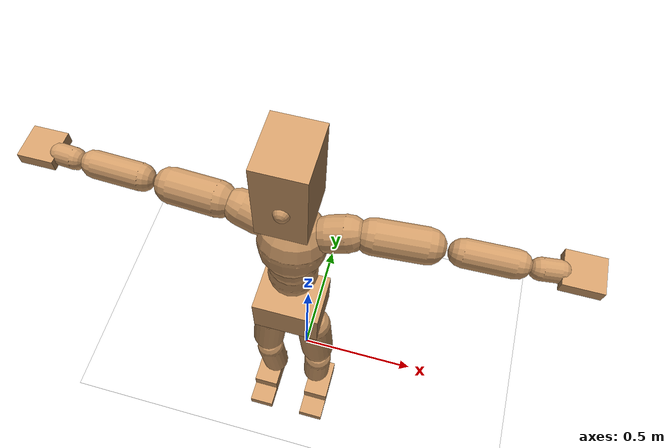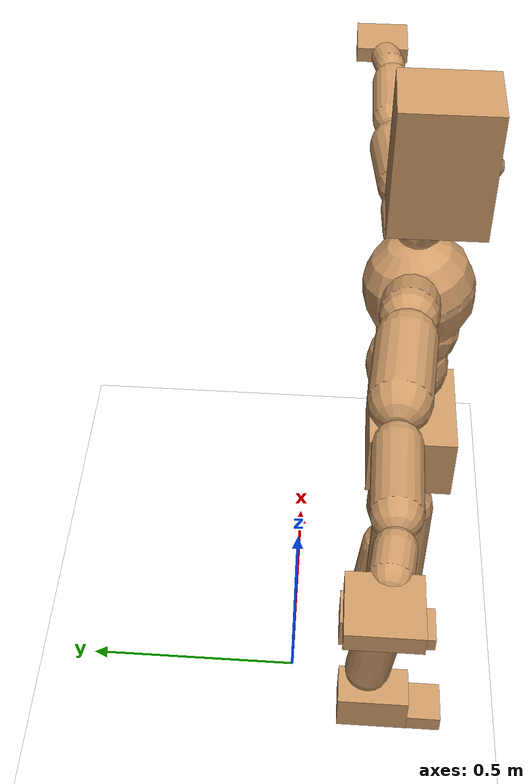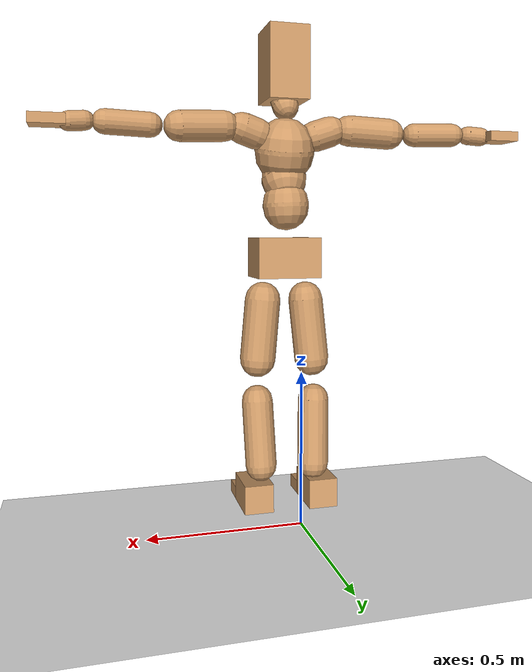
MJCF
<mujoco model="humanoid">
  <option integrator="implicitfast" />

  <visual>
    <global offwidth="1280" offheight="960" />
    <headlight active="1" ambient="0.34 0.34 0.34" diffuse="0.5 0.5 0.5" />
  </visual>

  <default>
    <joint damping="2" stiffness="2" armature="0.01" limited="true" solimplimit="0 .99 .01" />
    <geom condim="1" friction="0.7 0.005 0.0001" solimp=".99 .99 .003" solref="0.015 1" margin="0.001" rgba="0.8 0.6 .4 1" />
    <default class="smplcontact">
      <geom condim="3" friction="1. 0.005 0.0001" solref="0.015 1" solimp="0.98 0.98 0.001" priority="1" />
    </default>
    <default class="stiff_medium">
      <joint stiffness="10" />
    </default>
    <default class="stiff_medium_higher">
      <joint stiffness="50" />
    </default>
    <default class="stiff_high">
      <joint stiffness="100" />
    </default>
  </default>

  <asset>
    <texture type="skybox" builtin="gradient" rgb1="0.99 0.99 0.99" rgb2="0.608 0.828 0.892" width="100" />
    <texture builtin="flat" height="1278" mark="cross" markrgb="1 1 1" name="texgeom" random="0.01" rgb1="0.8 0.6 0.4" rgb2="0.8 0.6 0.4" type="cube" width="127" />
    <texture name="texplane" type="2d" builtin="checker" markrgb="1 1 1" rgb1="0.756 0.772 0.76" rgb2="0.6 0.6 0.6" width="100" height="100" />
    <material name="MatPlane" reflectance="0.5" texture="texplane" texrepeat="1 1" texuniform="true" />
    <material name="geom" texture="texgeom" texuniform="true" />
  </asset>

  <worldbody>
    <light name="tracking_light" pos="0 0 7" dir="0 0 -1" directional="true" cutoff="100" exponent="1" diffuse="1 1 1" specular="0.1 0.1 0.1" mode="trackcom" />
    <camera name="back" pos="0 3 2.4" xyaxes="-1 0 0 0 -1 2" mode="trackcom" />
    <camera name="side" pos="-3 0 2.4" xyaxes="0 -1 0 1 0 2" mode="trackcom" />
    <camera name="front_side" pos="-2.8 -2.8 0.8" xyaxes="0.5 -0.5 0 0.1 0.1 1" mode="trackcom" />
    <geom condim="3" name="floor" pos="0 0 0" rgba="1 1 1 1" size="100 100 .2" type="plane" material="MatPlane" />
    <body name="Pelvis" pos="-0.0018 -0.2233 0.877729" euler="90 0 0">
      <site name="Pelvis" size="0.01" />
      <freejoint name="Pelvis" />
      <geom type="box" pos="0 -0.011604 -0.0056793" size="0.110385 0.0692406 0.0857058" quat="1.0000 0.0000 0.0000 0.0000" density="3165.830099" name="Pelvis" />
      <body name="L_Hip" pos="0.0717657 -0.0876536 -0.00702168">
        <joint name="L_Hip_x" type="hinge" pos="0 0 0" axis="1 0 0" stiffness="10" range="-160.0 22.92" class="stiff_medium" damping="15" />
        <joint name="L_Hip_y" type="hinge" pos="0 0 0" axis="0 1 0" stiffness="10" range="-70.0 70.0" class="stiff_medium" damping="10" />
        <joint name="L_Hip_z" type="hinge" pos="0 0 0" axis="0 0 1" stiffness="10" range="-28.65 90.0" class="stiff_medium" damping="10" />
        <geom type="capsule" density="2040.816327" fromto="0.00639814 -0.0694888 -0.000833922 0.0253919 -0.278142 -0.00333554" size="0.0613524" name="L_Hip" />
        <body name="L_Knee" pos="0.03179 -0.347631 -0.00416946">
          <joint name="L_Knee_x" type="hinge" pos="0 0 0" axis="1 0 0" range="-5.16 171.89" damping="8" />
          <joint name="L_Knee_y" type="hinge" pos="0 0 0" axis="0 1 0" range="-4.58 6.88" damping="8" />
          <joint name="L_Knee_z" type="hinge" pos="0 0 0" axis="0 0 1" range="-6.88 4.58" damping="8" />
          <geom type="capsule" density="1234.567901" fromto="-0.00249927 -0.0737519 -0.00805608 -0.0100968 -0.295006 -0.0324237" size="0.0539702" name="L_Knee" />
          <body name="L_Ankle" pos="-0.012596 -0.368758 -0.0404797">
            <joint name="L_Ankle_x" type="hinge" pos="0 0 0" axis="1 0 0" range="-45.84 45.84" class="stiff_medium" damping="6" />
            <joint name="L_Ankle_y" type="hinge" pos="0 0 0" axis="0 1 0" range="-74.48 22.92" class="stiff_medium" damping="3" />
            <joint name="L_Ankle_z" type="hinge" pos="0 0 0" axis="0 0 1" range="-4.58 4.58" class="stiff_medium" damping="6" />
            <geom type="box" pos="0.0240596 -0.0246791 0.023326" size="0.0498746 0.0479126 0.0819301" quat="1.0000 0.0000 0.0000 0.0000" density="449.071558" name="L_Ankle" class="smplcontact" />
            <body name="L_Toe" pos="0.0272606 -0.0576191 0.114991">
              <joint name="L_Toe_x" type="hinge" pos="0 0 0" axis="1 0 0" range="-91.67 22.92" />
              <joint name="L_Toe_y" type="hinge" pos="0 0 0" axis="0 1 0" range="-4.58 4.58" />
              <joint name="L_Toe_z" type="hinge" pos="0 0 0" axis="0 0 1" range="-4.58 4.58" />
              <geom type="box" pos="-0.0030978 0.0056793 0.0239043" size="0.0493583 0.020652 0.0478086" quat="1.0000 0.0000 0.0000 0.0000" density="423.206892" name="L_Toe" class="smplcontact" />
            </body>
          </body>
        </body>
      </body>
      <body name="R_Hip" pos="-0.069907 -0.0867904 -0.00444018">
        <joint name="R_Hip_x" type="hinge" pos="0 0 0" axis="1 0 0" stiffness="10" range="-160.0 22.92" class="stiff_medium" damping="15" />
        <joint name="R_Hip_y" type="hinge" pos="0 0 0" axis="0 1 0" stiffness="10" range="-70.0 70.0" class="stiff_medium" damping="10" />
        <joint name="R_Hip_z" type="hinge" pos="0 0 0" axis="0 0 1" stiffness="10" range="-90.0 28.65" class="stiff_medium" damping="10" />
        <geom type="capsule" density="2040.816327" fromto="-0.00713915 -0.0708785 -0.00167015 -0.0283565 -0.283608 -0.00658073" size="0.0604546" name="R_Hip" />
        <body name="R_Knee" pos="-0.0354957 -0.354487 -0.00825088">
          <joint name="R_Knee_x" type="hinge" pos="0 0 0" axis="1 0 0" range="-5.16 171.89" damping="8" />
          <joint name="R_Knee_y" type="hinge" pos="0 0 0" axis="0 1 0" range="-6.88 4.58" damping="8" />
          <joint name="R_Knee_z" type="hinge" pos="0 0 0" axis="0 0 1" range="-4.58 6.88" damping="8" />
          <geom type="capsule" density="1234.567901" fromto="0.0029695 -0.0738433 -0.00787987 0.0116788 -0.295282 -0.0313209" size="0.0539702" name="R_Knee" />
          <body name="R_Ankle" pos="0.0146483 -0.369126 -0.0392008">
            <joint name="R_Ankle_x" type="hinge" pos="0 0 0" axis="1 0 0" range="-45.84 45.84" class="stiff_medium" damping="6" />
            <joint name="R_Ankle_y" type="hinge" pos="0 0 0" axis="0 1 0" range="-22.92 74.48" class="stiff_medium" damping="3" />
            <joint name="R_Ankle_z" type="hinge" pos="0 0 0" axis="0 0 1" range="-4.58 4.58" class="stiff_medium" damping="6" />
            <geom type="box" pos="-0.0218911 -0.0179672 0.0246754" size="0.0498746 0.0493583 0.0833759" quat="1.0000 0.0000 0.0000 0.0000" density="434.700981" name="R_Ankle" class="smplcontact" />
            <body name="R_Toe" pos="-0.026228 -0.0496681 0.118847">
              <joint name="R_Toe_x" type="hinge" pos="0 0 0" axis="1 0 0" range="-91.67 22.92" />
              <joint name="R_Toe_y" type="hinge" pos="0 0 0" axis="0 1 0" range="-4.58 4.58" />
              <joint name="R_Toe_z" type="hinge" pos="0 0 0" axis="0 0 1" range="-4.58 4.58" />
              <geom type="box" pos="0.00433692 0.0046467 0.0218802" size="0.0494615 0.0223042 0.0475195" quat="1.0000 0.0000 0.0000 0.0000" density="407.384095" name="R_Toe" class="smplcontact" />
            </body>
          </body>
        </body>
      </body>
      <body name="Torso" pos="-0.0025815 0.104532 -0.0275704">
        <joint name="Torso_x" type="hinge" pos="0 0 0" axis="1 0 0" range="-25.78 57.3" class="stiff_medium" damping="15" />
        <joint name="Torso_y" type="hinge" pos="0 0 0" axis="0 1 0" range="-57.3 57.3" class="stiff_high" damping="20" />
        <joint name="Torso_z" type="hinge" pos="0 0 0" axis="0 0 1" range="-34.38 34.38" class="stiff_high" damping="20" />
        <geom type="capsule" density="2040.816327" fromto="0.00242204 0.0584586 0.000484408 0.00290279 0.0714388 0.000580558" size="0.0796146" name="Torso" />
        <body name="Spine" pos="0.00532456 0.129994 0.00106491">
          <joint name="Spine_x" type="hinge" pos="0 0 0" axis="1 0 0" stiffness="10" range="-25.78 57.3" class="stiff_medium" damping="15" />
          <joint name="Spine_y" type="hinge" pos="0 0 0" axis="0 1 0" stiffness="10" range="-57.3 57.3" class="stiff_high" damping="8" />
          <joint name="Spine_z" type="hinge" pos="0 0 0" axis="0 0 1" stiffness="20" range="-34.38 34.38" class="stiff_high" damping="12" />
          <geom type="capsule" density="2040.816327" fromto="0.000691716 0.0228915 0.0109446 0.000787867 0.0279874 0.0134445" size="0.0781652" name="Spine" />
          <body name="Chest" pos="0.00147958 0.0508789 0.0243891">
            <joint name="Chest_x" type="hinge" pos="0 0 0" axis="1 0 0" stiffness="10" range="-25.78 57.3" class="stiff_medium" damping="15" />
            <joint name="Chest_y" type="hinge" pos="0 0 0" axis="0 1 0" stiffness="10" range="-57.3 57.3" class="stiff_high" damping="8" />
            <joint name="Chest_z" type="hinge" pos="0 0 0" axis="0 0 1" stiffness="20" range="-34.38 34.38" class="stiff_high" damping="12" />
            <geom type="capsule" density="2040.816327" fromto="-0.000898474 0.0655798 -0.0166122 -0.000994624 0.0800985 -0.020362" size="0.103737" name="Chest" />
            <body name="Neck" pos="-0.00279576 0.205885 -0.0403941">
              <joint name="Neck_x" type="hinge" pos="0 0 0" axis="1 0 0" range="-28.65 57.3" class="stiff_medium_higher" damping="10" />
              <joint name="Neck_y" type="hinge" pos="0 0 0" axis="0 1 0" range="-40.11 40.11" class="stiff_medium_higher" damping="10" />
              <joint name="Neck_z" type="hinge" pos="0 0 0" axis="0 0 1" range="-40.11 40.11" class="stiff_medium_higher" damping="10" />
              <geom type="capsule" density="1000" fromto="0.000961334 0.0125294 0.00992962 0.00394937 0.0501209 0.0396172" size="0.0452481" name="Neck" />
              <body name="Head" pos="0.00501474 0.0626535 0.0494456">
                <joint name="Head_x" type="hinge" pos="0 0 0" axis="1 0 0" range="-28.65 57.3" class="stiff_medium_higher" damping="2" />
                <joint name="Head_y" type="hinge" pos="0 0 0" axis="0 1 0" range="-40.11 40.11" class="stiff_medium_higher" damping="2" />
                <joint name="Head_z" type="hinge" pos="0 0 0" axis="0 0 1" range="-40.11 40.11" class="stiff_medium_higher" damping="2" />
                <geom type="box" pos="-0.00485856 0.0941121 -0.0134189" size="0.0701021 0.123979 0.0879168" quat="1.0000 0.0000 0.0000 0.0000" density="1018.069894" name="Head" />
                <geom type="capsule" name="nose" size="0.023136 0.011568" pos="0 0.0752037 0.05784" quat="1 0 0 0" mass="0" contype="0" conaffinity="0" />
              </body>
            </body>
            <body name="L_Thorax" pos="0.0816412 0.117003 -0.0329812">
              <joint name="L_Thorax_x" type="hinge" pos="0 0 0" axis="1 0 0" range="-10.89 4.58" class="stiff_medium_higher" damping="20" />
              <joint name="L_Thorax_y" type="hinge" pos="0 0 0" axis="0 1 0" range="-28.65 17.19" class="stiff_medium_higher" damping="20" />
              <joint name="L_Thorax_z" type="hinge" pos="0 0 0" axis="0 0 1" range="-31.51 40.11" class="stiff_medium_higher" damping="20" />
              <geom type="capsule" density="1000" fromto="0.0174104 0.00583536 -0.00172436 0.0696423 0.0233417 -0.00679448" size="0.053663" name="L_Thorax" />
              <body name="L_Shoulder" pos="0.0870527 0.029177 -0.00851884">
                <joint name="L_Shoulder_x" type="hinge" pos="0 0 0" axis="1 0 0" range="-97.4 97.4" class="stiff_medium" damping="6" />
                <joint name="L_Shoulder_y" type="hinge" pos="0 0 0" axis="0 1 0" range="-108.86 80.21" class="stiff_medium" damping="6" />
                <joint name="L_Shoulder_z" type="hinge" pos="0 0 0" axis="0 0 1" range="-97.4 85.94" class="stiff_medium" damping="6" />
                <geom type="capsule" density="1000" fromto="0.0488282 -0.00245104 -0.00517472 0.195408 -0.00960126 -0.0206982" size="0.0523721" name="L_Shoulder" />
                <body name="L_Elbow" pos="0.244236 -0.0120523 -0.0258729">
                  <joint name="L_Elbow_x" type="hinge" pos="0 0 0" axis="1 0 0" range="-17.19 4.58" damping="5" />
                  <joint name="L_Elbow_y" type="hinge" pos="0 0 0" axis="0 1 0" range="-180.0 17.19" damping="5" />
                  <joint name="L_Elbow_z" type="hinge" pos="0 0 0" axis="0 0 1" range="-100.84 4.58" damping="5" />
                  <geom type="capsule" density="1000" fromto="0.0468527 0.00169365 -0.00018578 0.187599 0.00677406 -0.000844352" size="0.0410265" name="L_Elbow" />
                  <body name="L_Wrist" pos="0.234452 0.00846771 -0.00113143">
                    <joint name="L_Wrist_x" type="hinge" pos="0 0 0" axis="1 0 0" range="-180.0 22.92" />
                    <joint name="L_Wrist_y" type="hinge" pos="0 0 0" axis="0 1 0" range="-17.19 17.19" />
                    <joint name="L_Wrist_z" type="hinge" pos="0 0 0" axis="0 0 1" range="-22.92 22.92" />
                    <geom type="capsule" density="1000" fromto="0.015806 -0.00150292 -0.00282249 0.0632232 -0.00611293 -0.0112899" size="0.0322134" name="L_Wrist" class="smplcontact" />
                    <body name="L_Hand" pos="0.0790297 -0.00771721 -0.0140111">
                      <joint name="L_Hand_x" type="hinge" pos="0 0 0" axis="1 0 0" range="-17.19 17.19" />
                      <joint name="L_Hand_y" type="hinge" pos="0 0 0" axis="0 1 0" range="-51.57 51.57" />
                      <joint name="L_Hand_z" type="hinge" pos="0 0 0" axis="0 0 1" range="-91.67 91.67" />
                      <geom type="box" pos="0.0472792 0.0010326 -0.00598908" size="0.0561021 0.0163151 0.0555539" quat="1.0000 0.0000 0.0000 0.0000" density="400.552564" name="L_Hand" class="smplcontact" />
                    </body>
                  </body>
                </body>
              </body>
            </body>
            <body name="R_Thorax" pos="-0.0846283 0.114048 -0.0376521">
              <joint name="R_Thorax_x" type="hinge" pos="0 0 0" axis="1 0 0" range="-10.89 4.58" class="stiff_medium_higher" damping="20" />
              <joint name="R_Thorax_y" type="hinge" pos="0 0 0" axis="0 1 0" range="-17.19 28.65" class="stiff_medium_higher" damping="20" />
              <joint name="R_Thorax_z" type="hinge" pos="0 0 0" axis="0 0 1" range="-40.11 31.51" class="stiff_medium_higher" damping="20" />
              <geom type="capsule" density="1000" fromto="-0.0183675 0.00621815 -0.0017195 -0.0734692 0.0248724 -0.00698096" size="0.052633" name="R_Thorax" />
              <body name="R_Shoulder" pos="-0.0918345 0.0311928 -0.00870025">
                <joint name="R_Shoulder_x" type="hinge" pos="0 0 0" axis="1 0 0" range="-97.4 97.4" class="stiff_medium" damping="6" />
                <joint name="R_Shoulder_y" type="hinge" pos="0 0 0" axis="0 1 0" range="-80.21 108.86" class="stiff_medium" damping="6" />
                <joint name="R_Shoulder_z" type="hinge" pos="0 0 0" axis="0 0 1" range="-85.94 97.4" class="stiff_medium" damping="6" />
                <geom type="capsule" density="1000" fromto="-0.0476991 -0.00254285 -0.0040483 -0.190986 -0.0100694 -0.0160908" size="0.0537903" name="R_Shoulder" />
                <body name="R_Elbow" pos="-0.238685 -0.012511 -0.0201391">
                  <joint name="R_Elbow_x" type="hinge" pos="0 0 0" axis="1 0 0" range="-17.19 4.58" damping="5" />
                  <joint name="R_Elbow_y" type="hinge" pos="0 0 0" axis="0 1 0" range="-17.19 180.0" damping="5" />
                  <joint name="R_Elbow_z" type="hinge" pos="0 0 0" axis="0 0 1" range="-4.58 100.84" damping="5" />
                  <geom type="capsule" density="1000" fromto="-0.0480757 0.00150997 -0.00103479 -0.192115 0.00583773 -0.00413949" size="0.0413304" name="R_Elbow" />
                  <body name="R_Wrist" pos="-0.24019 0.0073477 -0.00527558">
                    <joint name="R_Wrist_x" type="hinge" pos="0 0 0" axis="1 0 0" range="-180.0 22.92" />
                    <joint name="R_Wrist_y" type="hinge" pos="0 0 0" axis="0 1 0" range="-17.19 17.19" />
                    <joint name="R_Wrist_z" type="hinge" pos="0 0 0" axis="0 0 1" range="-22.92 22.92" />
                    <geom type="capsule" density="1000" fromto="-0.0158997 -0.00112674 -0.0019784 -0.0636932 -0.00460776 -0.00781147" size="0.0330238" name="R_Wrist" class="smplcontact" />
                    <body name="R_Hand" pos="-0.0795937 -0.00573457 -0.00968867">
                      <joint name="R_Hand_x" type="hinge" pos="0 0 0" axis="1 0 0" range="-17.19 17.19" />
                      <joint name="R_Hand_y" type="hinge" pos="0 0 0" axis="0 1 0" range="-51.57 51.57" />
                      <joint name="R_Hand_z" type="hinge" pos="0 0 0" axis="0 0 1" range="-91.67 91.67" />
                      <geom type="box" pos="-0.0443063 -0.00092934 -0.00815754" size="0.0545677 0.0169346 0.05638" quat="1.0000 0.0000 0.0000 0.0000" density="403.679611" name="R_Hand" class="smplcontact" />
                    </body>
                  </body>
                </body>
              </body>
            </body>
          </body>
        </body>
      </body>
    </body>
  </worldbody>
  <actuator>
    <general name="L_Hip_x" joint="L_Hip_x" biastype="affine" gainprm="287.33006409732246" biasprm="-215.3247604770444 -180 -2.0" ctrllimited="true" ctrlrange="-1 1" forcerange="-360 360" />
    <general name="L_Hip_y" joint="L_Hip_y" biastype="affine" gainprm="219.9114857512855" biasprm="0.0 -180 -2.0" ctrllimited="true" ctrlrange="-1 1" forcerange="-360 360" />
    <general name="L_Hip_z" joint="L_Hip_z" biastype="affine" gainprm="186.3749841742145" biasprm="96.3683546488669 -180 -2.0" ctrllimited="true" ctrlrange="-1 1" forcerange="-360 360" />
    <general name="L_Knee_x" joint="L_Knee_x" biastype="affine" gainprm="278.10948965903646" biasprm="261.8988715665131 -180 -2.0" ctrllimited="true" ctrlrange="-1 1" forcerange="-360 360" />
    <general name="L_Knee_y" joint="L_Knee_y" biastype="affine" gainprm="18.001325905069514" biasprm="3.612831551628262 -180 -2.0" ctrllimited="true" ctrlrange="-1 1" forcerange="-360 360" />
    <general name="L_Knee_z" joint="L_Knee_z" biastype="affine" gainprm="18.001325905069514" biasprm="-3.612831551628262 -180 -2.0" ctrllimited="true" ctrlrange="-1 1" forcerange="-360 360" />
    <general name="L_Ankle_x" joint="L_Ankle_x" biastype="affine" gainprm="72.00530362027807" biasprm="0.0 -90 -2.0" ctrllimited="true" ctrlrange="-1 1" forcerange="-180 180" />
    <general name="L_Ankle_y" joint="L_Ankle_y" biastype="affine" gainprm="76.49778111491148" biasprm="-40.49512930477244 -90 -2.0" ctrllimited="true" ctrlrange="-1 1" forcerange="-180 180" />
    <general name="L_Ankle_z" joint="L_Ankle_z" biastype="affine" gainprm="7.1942471767206255" biasprm="0.0 -90 -2.0" ctrllimited="true" ctrlrange="-1 1" forcerange="-180 180" />
    <general name="L_Toe_x" joint="L_Toe_x" biastype="affine" gainprm="71.99902043497087" biasprm="-43.19689898685965 -72 -0.8" ctrllimited="true" ctrlrange="-1 1" forcerange="-144 144" />
    <general name="L_Toe_y" joint="L_Toe_y" biastype="affine" gainprm="5.755397741376501" biasprm="0.0 -72 -0.8" ctrllimited="true" ctrlrange="-1 1" forcerange="-144 144" />
    <general name="L_Toe_z" joint="L_Toe_z" biastype="affine" gainprm="5.755397741376501" biasprm="0.0 -72 -0.8" ctrllimited="true" ctrlrange="-1 1" forcerange="-144 144" />
    <general name="R_Hip_x" joint="R_Hip_x" biastype="affine" gainprm="287.33006409732246" biasprm="-215.3247604770444 -180 -2.0" ctrllimited="true" ctrlrange="-1 1" forcerange="-360 360" />
    <general name="R_Hip_y" joint="R_Hip_y" biastype="affine" gainprm="219.9114857512855" biasprm="0.0 -180 -2.0" ctrllimited="true" ctrlrange="-1 1" forcerange="-360 360" />
    <general name="R_Hip_z" joint="R_Hip_z" biastype="affine" gainprm="186.3749841742145" biasprm="-96.3683546488669 -180 -2.0" ctrllimited="true" ctrlrange="-1 1" forcerange="-360 360" />
    <general name="R_Knee_x" joint="R_Knee_x" biastype="affine" gainprm="278.10948965903646" biasprm="261.8988715665131 -180 -2.0" ctrllimited="true" ctrlrange="-1 1" forcerange="-360 360" />
    <general name="R_Knee_y" joint="R_Knee_y" biastype="affine" gainprm="18.001325905069514" biasprm="-3.612831551628262 -180 -2.0" ctrllimited="true" ctrlrange="-1 1" forcerange="-360 360" />
    <general name="R_Knee_z" joint="R_Knee_z" biastype="affine" gainprm="18.001325905069514" biasprm="3.612831551628262 -180 -2.0" ctrllimited="true" ctrlrange="-1 1" forcerange="-360 360" />
    <general name="R_Ankle_x" joint="R_Ankle_x" biastype="affine" gainprm="72.00530362027807" biasprm="0.0 -90 -2.0" ctrllimited="true" ctrlrange="-1 1" forcerange="-180 180" />
    <general name="R_Ankle_y" joint="R_Ankle_y" biastype="affine" gainprm="76.49778111491148" biasprm="40.49512930477244 -90 -2.0" ctrllimited="true" ctrlrange="-1 1" forcerange="-180 180" />
    <general name="R_Ankle_z" joint="R_Ankle_z" biastype="affine" gainprm="7.1942471767206255" biasprm="0.0 -90 -2.0" ctrllimited="true" ctrlrange="-1 1" forcerange="-180 180" />
    <general name="R_Toe_x" joint="R_Toe_x" biastype="affine" gainprm="71.99902043497087" biasprm="-43.19689898685965 -72 -0.8" ctrllimited="true" ctrlrange="-1 1" forcerange="-144 144" />
    <general name="R_Toe_y" joint="R_Toe_y" biastype="affine" gainprm="5.755397741376501" biasprm="0.0 -72 -0.8" ctrllimited="true" ctrlrange="-1 1" forcerange="-144 144" />
    <general name="R_Toe_z" joint="R_Toe_z" biastype="affine" gainprm="5.755397741376501" biasprm="0.0 -72 -0.8" ctrllimited="true" ctrlrange="-1 1" forcerange="-144 144" />
    <general name="Torso_x" joint="Torso_x" biastype="affine" gainprm="174.00234510682668" biasprm="66.0153336274335 -240 -4.0" ctrllimited="true" ctrlrange="-1 1" forcerange="-360 360" />
    <general name="Torso_y" joint="Torso_y" biastype="affine" gainprm="240.0176787342602" biasprm="0.0 -240 -4.0" ctrllimited="true" ctrlrange="-1 1" forcerange="-360 360" />
    <general name="Torso_z" joint="Torso_z" biastype="affine" gainprm="144.01060724055614" biasprm="0.0 -240 -4.0" ctrllimited="true" ctrlrange="-1 1" forcerange="-360 360" />
    <general name="Spine_x" joint="Spine_x" biastype="affine" gainprm="174.00234510682668" biasprm="66.0153336274335 -240 -4.0" ctrllimited="true" ctrlrange="-1 1" forcerange="-360 360" />
    <general name="Spine_y" joint="Spine_y" biastype="affine" gainprm="240.0176787342602" biasprm="0.0 -240 -4.0" ctrllimited="true" ctrlrange="-1 1" forcerange="-360 360" />
    <general name="Spine_z" joint="Spine_z" biastype="affine" gainprm="144.01060724055614" biasprm="0.0 -240 -4.0" ctrllimited="true" ctrlrange="-1 1" forcerange="-360 360" />
    <general name="Chest_x" joint="Chest_x" biastype="affine" gainprm="174.00234510682668" biasprm="66.0153336274335 -240 -4.0" ctrllimited="true" ctrlrange="-1 1" forcerange="-360 360" />
    <general name="Chest_y" joint="Chest_y" biastype="affine" gainprm="240.0176787342602" biasprm="0.0 -240 -4.0" ctrllimited="true" ctrlrange="-1 1" forcerange="-360 360" />
    <general name="Chest_z" joint="Chest_z" biastype="affine" gainprm="144.01060724055614" biasprm="0.0 -240 -4.0" ctrllimited="true" ctrlrange="-1 1" forcerange="-360 360" />
    <general name="Neck_x" joint="Neck_x" biastype="affine" gainprm="27.00198885760427" biasprm="9.000662952534757 -36 -0.8" ctrllimited="true" ctrlrange="-1 1" forcerange="-72 72" />
    <general name="Neck_y" joint="Neck_y" biastype="affine" gainprm="25.20185626709732" biasprm="0.0 -36 -0.8" ctrllimited="true" ctrlrange="-1 1" forcerange="-72 72" />
    <general name="Neck_z" joint="Neck_z" biastype="affine" gainprm="25.20185626709732" biasprm="0.0 -36 -0.8" ctrllimited="true" ctrlrange="-1 1" forcerange="-72 72" />
    <general name="Head_x" joint="Head_x" biastype="affine" gainprm="18.001325905069514" biasprm="6.000441968356505 -24 -0.8" ctrllimited="true" ctrlrange="-1 1" forcerange="-48 48" />
    <general name="Head_y" joint="Head_y" biastype="affine" gainprm="16.801237511398213" biasprm="0.0 -24 -0.8" ctrllimited="true" ctrlrange="-1 1" forcerange="-48 48" />
    <general name="Head_z" joint="Head_z" biastype="affine" gainprm="16.801237511398213" biasprm="0.0 -24 -0.8" ctrllimited="true" ctrlrange="-1 1" forcerange="-48 48" />
    <general name="L_Thorax_x" joint="L_Thorax_x" biastype="affine" gainprm="16.200146117011364" biasprm="-6.6078165480505335 -120 -1.6" ctrllimited="true" ctrlrange="-1 1" forcerange="-240 240" />
    <general name="L_Thorax_y" joint="L_Thorax_y" biastype="affine" gainprm="48.00353574685204" biasprm="-12.00088393671301 -120 -1.6" ctrllimited="true" ctrlrange="-1 1" forcerange="-240 240" />
    <general name="L_Thorax_z" joint="L_Thorax_z" biastype="affine" gainprm="75.00028861670033" biasprm="9.00589894029074 -120 -1.6" ctrllimited="true" ctrlrange="-1 1" forcerange="-240 240" />
    <general name="L_Shoulder_x" joint="L_Shoulder_x" biastype="affine" gainprm="81.5976331892389" biasprm="0.0 -48 -1.6" ctrllimited="true" ctrlrange="-1 1" forcerange="-96 96" />
    <general name="L_Shoulder_y" joint="L_Shoulder_y" biastype="affine" gainprm="79.19745640189629" biasprm="-12.00088393671301 -48 -1.6" ctrllimited="true" ctrlrange="-1 1" forcerange="-96 96" />
    <general name="L_Shoulder_z" joint="L_Shoulder_z" biastype="affine" gainprm="76.79727961455369" biasprm="-4.800353574685214 -48 -1.6" ctrllimited="true" ctrlrange="-1 1" forcerange="-96 96" />
    <general name="L_Elbow_x" joint="L_Elbow_x" biastype="affine" gainprm="13.67849441372996" biasprm="-7.923096672353461 -72 -0.8" ctrllimited="true" ctrlrange="-1 1" forcerange="-144 144" />
    <general name="L_Elbow_y" joint="L_Elbow_y" biastype="affine" gainprm="123.89813107227425" biasprm="-102.29653998619085 -72 -0.8" ctrllimited="true" ctrlrange="-1 1" forcerange="-144 144" />
    <general name="L_Elbow_z" joint="L_Elbow_z" biastype="affine" gainprm="66.23733950828719" biasprm="-60.4819417669107 -72 -0.8" ctrllimited="true" ctrlrange="-1 1" forcerange="-144 144" />
    <general name="L_Wrist_x" joint="L_Wrist_x" biastype="affine" gainprm="21.24973270888136" biasprm="-16.449379134196157 -12 -0.8" ctrllimited="true" ctrlrange="-1 1" forcerange="-24 24" />
    <general name="L_Wrist_y" joint="L_Wrist_y" biastype="affine" gainprm="3.6002651810139037" biasprm="0.0 -12 -0.8" ctrllimited="true" ctrlrange="-1 1" forcerange="-24 24" />
    <general name="L_Wrist_z" joint="L_Wrist_z" biastype="affine" gainprm="4.800353574685205" biasprm="0.0 -12 -0.8" ctrllimited="true" ctrlrange="-1 1" forcerange="-24 24" />
    <general name="L_Hand_x" joint="L_Hand_x" biastype="affine" gainprm="3.6002651810139037" biasprm="0.0 -12 -0.8" ctrllimited="true" ctrlrange="-1 1" forcerange="-24 24" />
    <general name="L_Hand_y" joint="L_Hand_y" biastype="affine" gainprm="10.800795543041708" biasprm="0.0 -12 -0.8" ctrllimited="true" ctrlrange="-1 1" forcerange="-24 24" />
    <general name="L_Hand_z" joint="L_Hand_z" biastype="affine" gainprm="19.199319903638422" biasprm="0.0 -12 -0.8" ctrllimited="true" ctrlrange="-1 1" forcerange="-24 24" />
    <general name="R_Thorax_x" joint="R_Thorax_x" biastype="affine" gainprm="16.200146117011364" biasprm="-6.6078165480505335 -120 -1.6" ctrllimited="true" ctrlrange="-1 1" forcerange="-240 240" />
    <general name="R_Thorax_y" joint="R_Thorax_y" biastype="affine" gainprm="48.00353574685204" biasprm="12.000883936713002 -120 -1.6" ctrllimited="true" ctrlrange="-1 1" forcerange="-240 240" />
    <general name="R_Thorax_z" joint="R_Thorax_z" biastype="affine" gainprm="75.00028861670033" biasprm="-9.00589894029074 -120 -1.6" ctrllimited="true" ctrlrange="-1 1" forcerange="-240 240" />
    <general name="R_Shoulder_x" joint="R_Shoulder_x" biastype="affine" gainprm="81.5976331892389" biasprm="0.0 -48 -1.6" ctrllimited="true" ctrlrange="-1 1" forcerange="-96 96" />
    <general name="R_Shoulder_y" joint="R_Shoulder_y" biastype="affine" gainprm="79.19745640189629" biasprm="12.00088393671301 -48 -1.6" ctrllimited="true" ctrlrange="-1 1" forcerange="-96 96" />
    <general name="R_Shoulder_z" joint="R_Shoulder_z" biastype="affine" gainprm="76.79727961455369" biasprm="4.800353574685204 -48 -1.6" ctrllimited="true" ctrlrange="-1 1" forcerange="-96 96" />
    <general name="R_Elbow_x" joint="R_Elbow_x" biastype="affine" gainprm="13.67849441372996" biasprm="-7.923096672353461 -72 -0.8" ctrllimited="true" ctrlrange="-1 1" forcerange="-144 144" />
    <general name="R_Elbow_y" joint="R_Elbow_y" biastype="affine" gainprm="123.89813107227425" biasprm="102.29653998619085 -72 -0.8" ctrllimited="true" ctrlrange="-1 1" forcerange="-144 144" />
    <general name="R_Elbow_z" joint="R_Elbow_z" biastype="affine" gainprm="66.23733950828719" biasprm="60.481941766910694 -72 -0.8" ctrllimited="true" ctrlrange="-1 1" forcerange="-144 144" />
    <general name="R_Wrist_x" joint="R_Wrist_x" biastype="affine" gainprm="21.24973270888136" biasprm="-16.449379134196157 -12 -0.8" ctrllimited="true" ctrlrange="-1 1" forcerange="-24 24" />
    <general name="R_Wrist_y" joint="R_Wrist_y" biastype="affine" gainprm="3.6002651810139037" biasprm="0.0 -12 -0.8" ctrllimited="true" ctrlrange="-1 1" forcerange="-24 24" />
    <general name="R_Wrist_z" joint="R_Wrist_z" biastype="affine" gainprm="4.800353574685205" biasprm="0.0 -12 -0.8" ctrllimited="true" ctrlrange="-1 1" forcerange="-24 24" />
    <general name="R_Hand_x" joint="R_Hand_x" biastype="affine" gainprm="3.6002651810139037" biasprm="0.0 -12 -0.8" ctrllimited="true" ctrlrange="-1 1" forcerange="-24 24" />
    <general name="R_Hand_y" joint="R_Hand_y" biastype="affine" gainprm="10.800795543041708" biasprm="0.0 -12 -0.8" ctrllimited="true" ctrlrange="-1 1" forcerange="-24 24" />
    <general name="R_Hand_z" joint="R_Hand_z" biastype="affine" gainprm="19.199319903638422" biasprm="0.0 -12 -0.8" ctrllimited="true" ctrlrange="-1 1" forcerange="-24 24" />
  </actuator>
  <contact>
    <exclude body1="Torso" body2="Chest" />
    <exclude body1="Head" body2="Chest" />
    <exclude body1="R_Knee" body2="R_Toe" />
    <exclude body1="R_Knee" body2="L_Ankle" />
    <exclude body1="R_Knee" body2="L_Toe" />
    <exclude body1="L_Knee" body2="L_Toe" />
    <exclude body1="L_Knee" body2="R_Ankle" />
    <exclude body1="L_Knee" body2="R_Toe" />
    <exclude body1="L_Shoulder" body2="Chest" />
    <exclude body1="R_Shoulder" body2="Chest" />
  </contact>
  <sensor>
    <framelinvel name="sensor_Pelvis_framelinvel" objtype="xbody" objname="Pelvis" />
    <framelinvel name="sensor_L_Hip_framelinvel" objtype="xbody" objname="L_Hip" />
    <framelinvel name="sensor_L_Knee_framelinvel" objtype="xbody" objname="L_Knee" />
    <framelinvel name="sensor_L_Ankle_framelinvel" objtype="xbody" objname="L_Ankle" />
    <framelinvel name="sensor_L_Toe_framelinvel" objtype="xbody" objname="L_Toe" />
    <framelinvel name="sensor_R_Hip_framelinvel" objtype="xbody" objname="R_Hip" />
    <framelinvel name="sensor_R_Knee_framelinvel" objtype="xbody" objname="R_Knee" />
    <framelinvel name="sensor_R_Ankle_framelinvel" objtype="xbody" objname="R_Ankle" />
    <framelinvel name="sensor_R_Toe_framelinvel" objtype="xbody" objname="R_Toe" />
    <framelinvel name="sensor_Torso_framelinvel" objtype="xbody" objname="Torso" />
    <framelinvel name="sensor_Spine_framelinvel" objtype="xbody" objname="Spine" />
    <framelinvel name="sensor_Chest_framelinvel" objtype="xbody" objname="Chest" />
    <framelinvel name="sensor_Neck_framelinvel" objtype="xbody" objname="Neck" />
    <framelinvel name="sensor_Head_framelinvel" objtype="xbody" objname="Head" />
    <framelinvel name="sensor_L_Thorax_framelinvel" objtype="xbody" objname="L_Thorax" />
    <framelinvel name="sensor_L_Shoulder_framelinvel" objtype="xbody" objname="L_Shoulder" />
    <framelinvel name="sensor_L_Elbow_framelinvel" objtype="xbody" objname="L_Elbow" />
    <framelinvel name="sensor_L_Wrist_framelinvel" objtype="xbody" objname="L_Wrist" />
    <framelinvel name="sensor_L_Hand_framelinvel" objtype="xbody" objname="L_Hand" />
    <framelinvel name="sensor_R_Thorax_framelinvel" objtype="xbody" objname="R_Thorax" />
    <framelinvel name="sensor_R_Shoulder_framelinvel" objtype="xbody" objname="R_Shoulder" />
    <framelinvel name="sensor_R_Elbow_framelinvel" objtype="xbody" objname="R_Elbow" />
    <framelinvel name="sensor_R_Wrist_framelinvel" objtype="xbody" objname="R_Wrist" />
    <framelinvel name="sensor_R_Hand_framelinvel" objtype="xbody" objname="R_Hand" />
    <frameangvel name="sensor_Pelvis_frameangvel" objtype="xbody" objname="Pelvis" />
    <frameangvel name="sensor_L_Hip_frameangvel" objtype="xbody" objname="L_Hip" />
    <frameangvel name="sensor_L_Knee_frameangvel" objtype="xbody" objname="L_Knee" />
    <frameangvel name="sensor_L_Ankle_frameangvel" objtype="xbody" objname="L_Ankle" />
    <frameangvel name="sensor_L_Toe_frameangvel" objtype="xbody" objname="L_Toe" />
    <frameangvel name="sensor_R_Hip_frameangvel" objtype="xbody" objname="R_Hip" />
    <frameangvel name="sensor_R_Knee_frameangvel" objtype="xbody" objname="R_Knee" />
    <frameangvel name="sensor_R_Ankle_frameangvel" objtype="xbody" objname="R_Ankle" />
    <frameangvel name="sensor_R_Toe_frameangvel" objtype="xbody" objname="R_Toe" />
    <frameangvel name="sensor_Torso_frameangvel" objtype="xbody" objname="Torso" />
    <frameangvel name="sensor_Spine_frameangvel" objtype="xbody" objname="Spine" />
    <frameangvel name="sensor_Chest_frameangvel" objtype="xbody" objname="Chest" />
    <frameangvel name="sensor_Neck_frameangvel" objtype="xbody" objname="Neck" />
    <frameangvel name="sensor_Head_frameangvel" objtype="xbody" objname="Head" />
    <frameangvel name="sensor_L_Thorax_frameangvel" objtype="xbody" objname="L_Thorax" />
    <frameangvel name="sensor_L_Shoulder_frameangvel" objtype="xbody" objname="L_Shoulder" />
    <frameangvel name="sensor_L_Elbow_frameangvel" objtype="xbody" objname="L_Elbow" />
    <frameangvel name="sensor_L_Wrist_frameangvel" objtype="xbody" objname="L_Wrist" />
    <frameangvel name="sensor_L_Hand_frameangvel" objtype="xbody" objname="L_Hand" />
    <frameangvel name="sensor_R_Thorax_frameangvel" objtype="xbody" objname="R_Thorax" />
    <frameangvel name="sensor_R_Shoulder_frameangvel" objtype="xbody" objname="R_Shoulder" />
    <frameangvel name="sensor_R_Elbow_frameangvel" objtype="xbody" objname="R_Elbow" />
    <frameangvel name="sensor_R_Wrist_frameangvel" objtype="xbody" objname="R_Wrist" />
    <frameangvel name="sensor_R_Hand_frameangvel" objtype="xbody" objname="R_Hand" />
    <subtreelinvel name="Chest_subtreelinvel" body="Chest" />
    <gyro name="Pelvis_gyro" site="Pelvis" />
  </sensor>
</mujoco>
